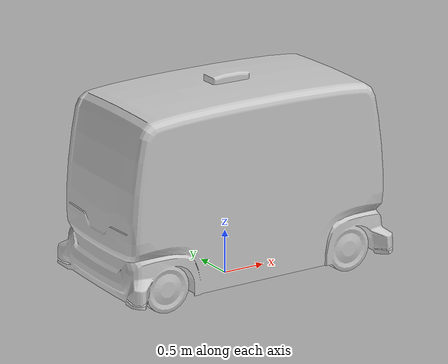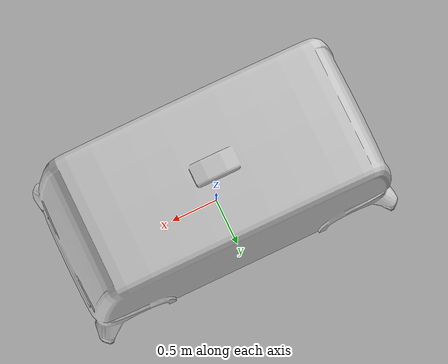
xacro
<?xml version="1.0"?>
<robot xmlns:xacro="http://ros.org/wiki/xacro">
  <!-- load parameter -->
  <xacro:property name="vehicle_info" value="${xacro.load_yaml('$(find nuway_vehicle_description)/config/vehicle_info.param.yaml')}"/>

  <!-- vehicle body -->
  <link name="base_link">
    <visual>
      <origin xyz="0 0 0" rpy="0 0 ${pi/2.0}"/>
      <geometry>
        <mesh filename="package://nuway_vehicle_description/mesh/nuway.dae" scale="1 1 1"/>
      </geometry>
    </visual>
  </link>
</robot>
